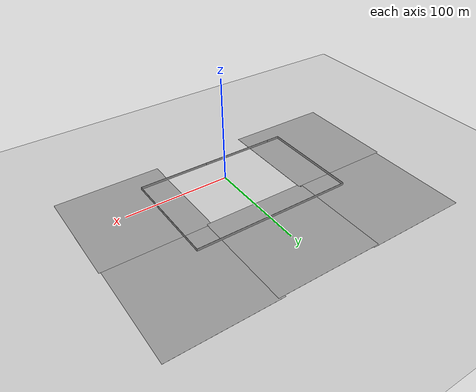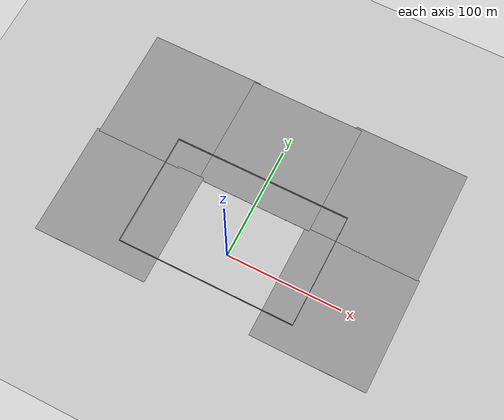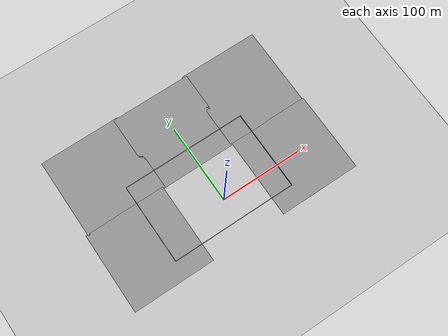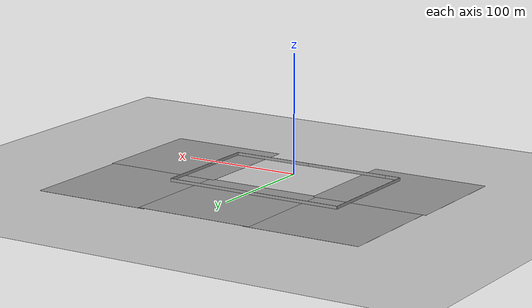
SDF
<sdf version="1.6">
 <world name="default">
  <light name="sun" type="directional">
   <pose>0 0 10 0 -0 0</pose>
   <diffuse>0.8 0.8 0.8 1</diffuse>
   <specular>0.2 0.2 0.2 1</specular>
   <attenuation>
    <range>1000</range>
    <constant>0.9</constant>
    <linear>0.01</linear>
    <quadratic>0.001</quadratic>
   </attenuation>
   <direction>-0.5 0.1 -0.9</direction>
   <spot><inner_angle>0</inner_angle><outer_angle>0</outer_angle><falloff>0</falloff></spot>
  </light>
  <model name="ground_plane">
   <static>1</static>
   <link name="link">
    <collision name="collision">
     <geometry><plane><normal>0 0 1</normal><size>100 100</size></plane></geometry>
     <surface><friction><ode><mu>100</mu><mu2>50</mu2></ode></friction></surface>
    </collision>
    <visual name="visual">
     <cast_shadows>0</cast_shadows>
     <geometry><plane><normal>0 0 1</normal><size>100 100</size></plane></geometry>
     <material>
      <script><uri>file://media/materials/scripts/gazebo.material</uri><name>Gazebo/Grey</name></script>
     </material>
    </visual>
   </link>
  </model>
  <gravity>0 0 -9.8</gravity>
  <magnetic_field>6e-06 2.3e-05 -4.2e-05</magnetic_field>
  <atmosphere type="adiabatic"/>
  <physics name="default_physics" default="0" type="ode">
   <max_step_size>0.001</max_step_size>
   <real_time_factor>1</real_time_factor>
   <real_time_update_rate>1000</real_time_update_rate>
  </physics>
  <scene><ambient>0.4 0.4 0.4 1</ambient><background>0.7 0.7 0.7 1</background><shadows>1</shadows></scene>
  <spherical_coordinates>
   <surface_model>EARTH_WGS84</surface_model>
   <latitude_deg>0</latitude_deg>
   <longitude_deg>0</longitude_deg>
   <elevation>0</elevation>
   <heading_deg>0</heading_deg>
  </spherical_coordinates>
  <model name="walls">
   <pose>-5.255 21.5443 0 0 -0 0</pose>
   <link name="Wall_2">
    <collision name="Wall_2_Collision">
     <geometry><box><size>72.75 0.15 2.5</size></box></geometry>
     <pose>0 0 1.25 0 -0 0</pose>
    </collision>
    <visual name="Wall_2_Visual">
     <pose>0 0 1.25 0 -0 0</pose>
     <geometry><box><size>72.75 0.15 2.5</size></box></geometry>
     <material>
      <script><uri>file://media/materials/scripts/gazebo.material</uri><name>Gazebo/Grey</name></script>
      <ambient>1 1 1 1</ambient>
     </material>
     <meta><layer>0</layer></meta>
    </visual>
    <pose>-27.15 -49.8 0 0 -0 3.14159</pose>
   </link>
   <link name="Wall_3">
    <collision name="Wall_3_Collision">
     <geometry><box><size>13.75 0.15 2.5</size></box></geometry>
     <pose>0 0 1.25 0 -0 0</pose>
    </collision>
    <visual name="Wall_3_Visual">
     <pose>0 0 1.25 0 -0 0</pose>
     <geometry><box><size>13.75 0.15 2.5</size></box></geometry>
     <material>
      <script><uri>file://media/materials/scripts/gazebo.material</uri><name>Gazebo/Grey</name></script>
      <ambient>1 1 1 1</ambient>
     </material>
     <meta><layer>0</layer></meta>
    </visual>
    <pose>-70.25 -49.8 0 0 -0 3.14159</pose>
   </link>
   <link name="Wall_4">
    <collision name="Wall_4_Collision">
     <geometry><box><size>99.75 0.15 2.5</size></box></geometry>
     <pose>0 0 1.25 0 -0 0</pose>
    </collision>
    <visual name="Wall_4_Visual">
     <pose>0 0 1.25 0 -0 0</pose>
     <geometry><box><size>99.75 0.15 2.5</size></box></geometry>
     <material>
      <script><uri>file://media/materials/scripts/gazebo.material</uri><name>Gazebo/Grey</name></script>
      <ambient>1 1 1 1</ambient>
     </material>
     <meta><layer>0</layer></meta>
    </visual>
    <pose>-77.05 0 0 0 -0 1.5708</pose>
   </link>
   <link name="Wall_5">
    <collision name="Wall_5_Collision">
     <geometry><box><size>154.25 0.15 2.5</size></box></geometry>
     <pose>0 0 1.25 0 -0 0</pose>
    </collision>
    <visual name="Wall_5_Visual">
     <pose>0 0 1.25 0 -0 0</pose>
     <geometry><box><size>154.25 0.15 2.5</size></box></geometry>
     <material>
      <script><uri>file://media/materials/scripts/gazebo.material</uri><name>Gazebo/Grey</name></script>
      <ambient>1 1 1 1</ambient>
     </material>
     <meta><layer>0</layer></meta>
    </visual>
    <pose>1e-06 49.8 0 0 -0 0</pose>
   </link>
   <link name="Wall_6">
    <collision name="Wall_6_Collision">
     <geometry><box><size>99.75 0.15 2.5</size></box></geometry>
     <pose>0 0 1.25 0 -0 0</pose>
    </collision>
    <visual name="Wall_6_Visual">
     <pose>0 0 1.25 0 -0 0</pose>
     <geometry><box><size>99.75 0.15 2.5</size></box></geometry>
     <material>
      <script><uri>file://media/materials/scripts/gazebo.material</uri><name>Gazebo/Grey</name></script>
      <ambient>1 1 1 1</ambient>
     </material>
     <meta><layer>0</layer></meta>
    </visual>
    <pose>77.05 0 0 0 -0 -1.5708</pose>
   </link>
   <link name="Wall_7">
    <collision name="Wall_7_Collision">
     <geometry><box><size>68.5 0.15 2.5</size></box></geometry>
     <pose>0 0 1.25 0 -0 0</pose>
    </collision>
    <visual name="Wall_7_Visual">
     <pose>0 0 1.25 0 -0 0</pose>
     <geometry><box><size>68.5 0.15 2.5</size></box></geometry>
     <material>
      <script><uri>file://media/materials/scripts/gazebo.material</uri><name>Gazebo/Grey</name></script>
      <ambient>1 1 1 1</ambient>
     </material>
     <meta><layer>0</layer></meta>
    </visual>
    <pose>42.875 -49.8 0 0 -0 3.14159</pose>
   </link>
   <static>1</static>
  </model>
  <audio><device>default</device></audio>
  <model name="ground_plane_0">
   <static>1</static>
   <link name="link">
    <collision name="collision">
     <geometry><plane><normal>0 0 1</normal><size>100 100</size></plane></geometry>
     <surface>
      <contact><collide_bitmask>65535</collide_bitmask></contact>
      <friction><ode><mu>100</mu><mu2>50</mu2></ode></friction>
     </surface>
    </collision>
    <visual name="visual">
     <cast_shadows>0</cast_shadows>
     <geometry><plane><normal>0 0 1</normal><size>100 100</size></plane></geometry>
     <material>
      <script><uri>file://media/materials/scripts/gazebo.material</uri><name>Gazebo/Grey</name></script>
     </material>
    </visual>
   </link>
   <pose>94.8426 -0.234593 0 0 -0 0</pose>
  </model>
  <model name="ground_plane_1">
   <static>1</static>
   <link name="link">
    <collision name="collision">
     <geometry><plane><normal>0 0 1</normal><size>100 100</size></plane></geometry>
     <surface>
      <contact><collide_bitmask>65535</collide_bitmask></contact>
      <friction><ode><mu>100</mu><mu2>50</mu2></ode></friction>
     </surface>
    </collision>
    <visual name="visual">
     <cast_shadows>0</cast_shadows>
     <geometry><plane><normal>0 0 1</normal><size>100 100</size></plane></geometry>
     <material>
      <script><uri>file://media/materials/scripts/gazebo.material</uri><name>Gazebo/Grey</name></script>
     </material>
    </visual>
   </link>
   <pose>93.2974 99.1948 0 0 -0 0</pose>
  </model>
  <model name="ground_plane_2">
   <static>1</static>
   <link name="link">
    <collision name="collision">
     <geometry><plane><normal>0 0 1</normal><size>100 100</size></plane></geometry>
     <surface>
      <contact><collide_bitmask>65535</collide_bitmask></contact>
      <friction><ode><mu>100</mu><mu2>50</mu2></ode></friction>
     </surface>
    </collision>
    <visual name="visual">
     <cast_shadows>0</cast_shadows>
     <geometry><plane><normal>0 0 1</normal><size>100 100</size></plane></geometry>
     <material>
      <script><uri>file://media/materials/scripts/gazebo.material</uri><name>Gazebo/Grey</name></script>
     </material>
    </visual>
   </link>
   <pose>-1.13085 97.7297 0 0 -0 0</pose>
  </model>
  <model name="ground_plane_3">
   <static>1</static>
   <link name="link">
    <collision name="collision">
     <geometry><plane><normal>0 0 1</normal><size>100 100</size></plane></geometry>
     <surface>
      <contact><collide_bitmask>65535</collide_bitmask></contact>
      <friction><ode><mu>100</mu><mu2>50</mu2></ode></friction>
     </surface>
    </collision>
    <visual name="visual">
     <cast_shadows>0</cast_shadows>
     <geometry><plane><normal>0 0 1</normal><size>100 100</size></plane></geometry>
     <material>
      <script><uri>file://media/materials/scripts/gazebo.material</uri><name>Gazebo/Grey</name></script>
     </material>
    </visual>
   </link>
   <pose>-97.8392 0.206775 0 0 -0 0</pose>
  </model>
  <model name="ground_plane_4">
   <static>1</static>
   <link name="link">
    <collision name="collision">
     <geometry><plane><normal>0 0 1</normal><size>100 100</size></plane></geometry>
     <surface>
      <contact><collide_bitmask>65535</collide_bitmask></contact>
      <friction><ode><mu>100</mu><mu2>50</mu2></ode></friction>
     </surface>
    </collision>
    <visual name="visual">
     <cast_shadows>0</cast_shadows>
     <geometry><plane><normal>0 0 1</normal><size>100 100</size></plane></geometry>
     <material>
      <script><uri>file://media/materials/scripts/gazebo.material</uri><name>Gazebo/Grey</name></script>
     </material>
    </visual>
   </link>
   <pose>-95.5555 98.6005 0 0 -0 0</pose>
  </model>
 </world>
</sdf>
